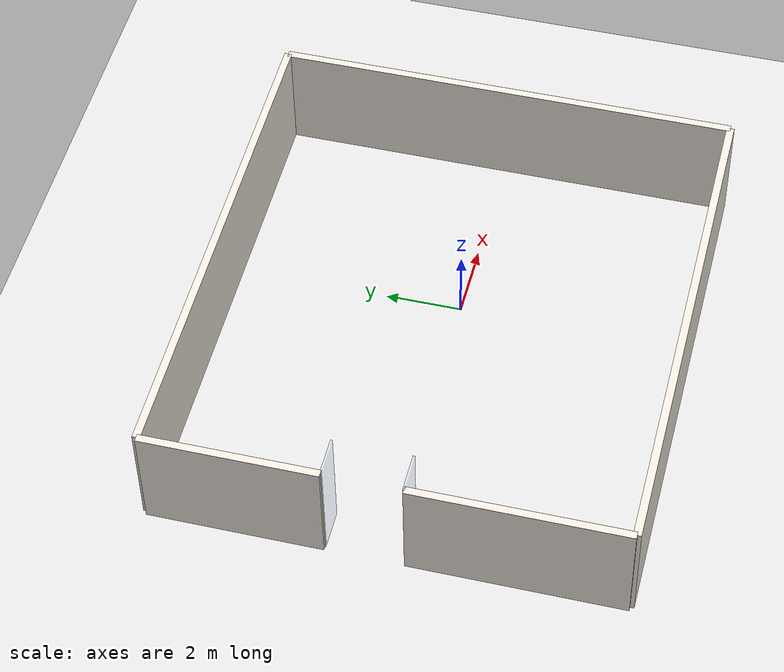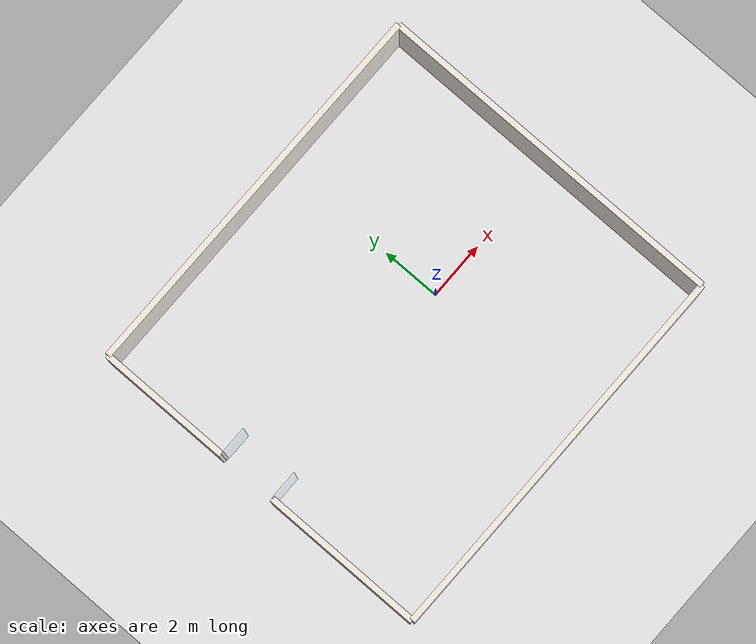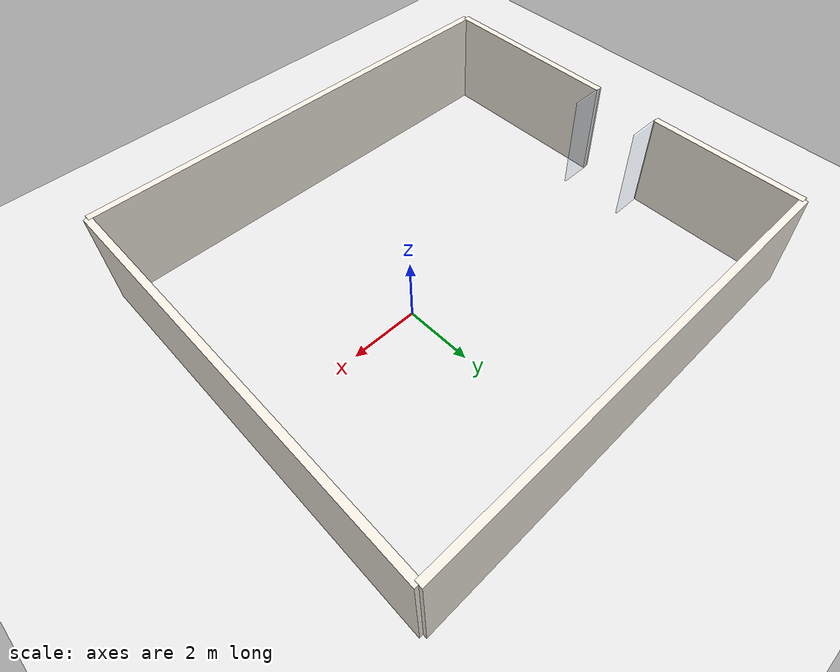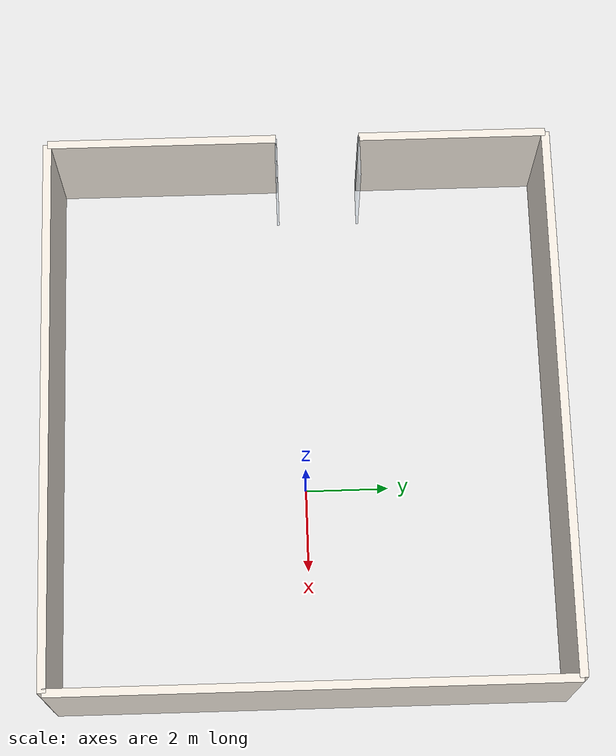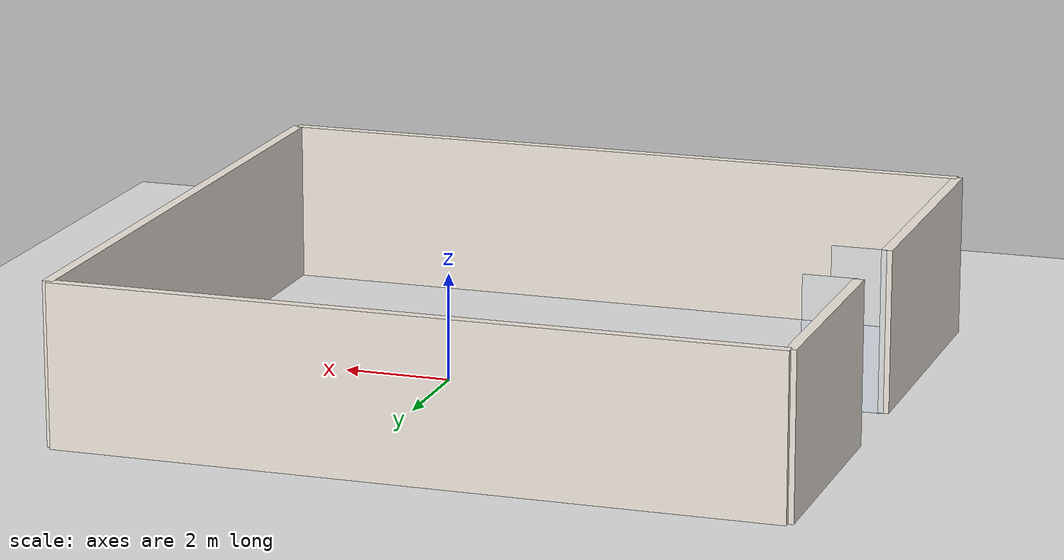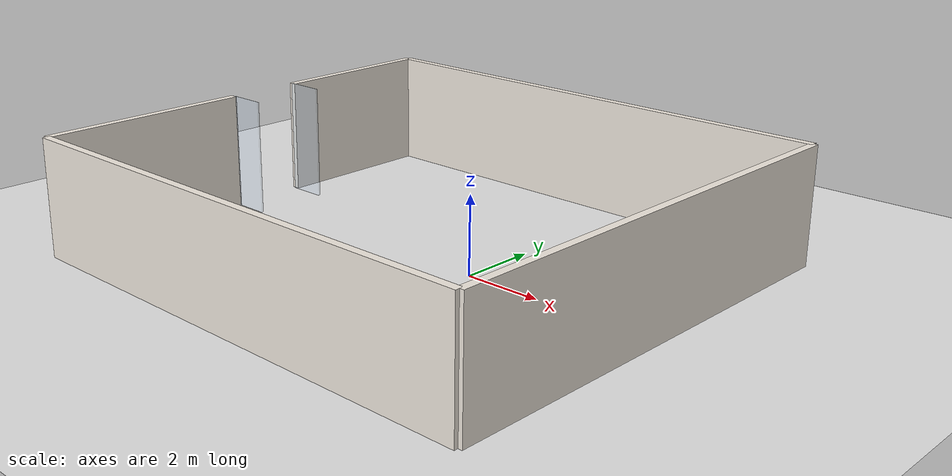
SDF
<sdf version="1.9">
 <world name="argo_restaurant">
  <model name="ground_plane">
   <static>true</static>
   <link name="link">
    <collision name="collision">
     <geometry><plane><normal>0 0 1</normal><size>100 100</size></plane></geometry>
    </collision>
    <visual name="visual">
     <geometry><plane><normal>0 0 1</normal><size>100 100</size></plane></geometry>
     <material>
      <ambient>0.9 0.9 0.9 1</ambient>
      <diffuse>0.9 0.9 0.9 1</diffuse>
      <specular>0.1 0.1 0.1 1</specular>
      <pbr><metal><roughness>0.1</roughness><metalness>0.0</metalness></metal></pbr>
     </material>
    </visual>
   </link>
  </model>
  <model name="restaurant_walls">
   <static>true</static>
   <link name="north_wall_link">
    <pose>-1.4 6 1.5 0 0 0</pose>
    <collision name="north_wall_collision"><geometry><box><size>13.2 0.2 3.0</size></box></geometry></collision>
    <visual name="north_wall_visual">
     <geometry><box><size>13.2 0.2 3.0</size></box></geometry>
     <material>
      <ambient>0.95 0.92 0.88 1</ambient>
      <diffuse>0.95 0.92 0.88 1</diffuse>
      <specular>0.1 0.1 0.1 1</specular>
      <pbr><metal><roughness>0.8</roughness><metalness>0.0</metalness></metal></pbr>
     </material>
    </visual>
   </link>
   <link name="south_wall_link">
    <pose>-1.4 -6 1.5 0 0 0</pose>
    <collision name="south_wall_collision"><geometry><box><size>13.2 0.2 3.0</size></box></geometry></collision>
    <visual name="south_wall_visual">
     <geometry><box><size>13.2 0.2 3.0</size></box></geometry>
     <material>
      <ambient>0.95 0.92 0.88 1</ambient>
      <diffuse>0.95 0.92 0.88 1</diffuse>
      <specular>0.1 0.1 0.1 1</specular>
      <pbr><metal><roughness>0.8</roughness><metalness>0.0</metalness></metal></pbr>
     </material>
    </visual>
   </link>
   <link name="east_wall_link">
    <pose>5.2 0 1.5 0 0 0</pose>
    <collision name="east_wall_collision"><geometry><box><size>0.2 12 3.0</size></box></geometry></collision>
    <visual name="east_wall_visual">
     <geometry><box><size>0.2 12 3.0</size></box></geometry>
     <material>
      <ambient>0.95 0.92 0.88 1</ambient>
      <diffuse>0.95 0.92 0.88 1</diffuse>
      <specular>0.1 0.1 0.1 1</specular>
      <pbr><metal><roughness>0.8</roughness><metalness>0.0</metalness></metal></pbr>
     </material>
    </visual>
   </link>
   <link name="west_wall_1_link">
    <pose>-8 -3.25 1.5 0 0 0</pose>
    <collision name="west_wall_1_collision"><geometry><box><size>0.2 5.5 3.0</size></box></geometry></collision>
    <visual name="west_wall_1_visual">
     <geometry><box><size>0.2 5.5 3.0</size></box></geometry>
     <material>
      <ambient>0.95 0.92 0.88 1</ambient>
      <diffuse>0.95 0.92 0.88 1</diffuse>
      <specular>0.1 0.1 0.1 1</specular>
      <pbr><metal><roughness>0.8</roughness><metalness>0.0</metalness></metal></pbr>
     </material>
    </visual>
   </link>
   <link name="west_wall_2_link">
    <pose>-8 3.75 1.5 0 0 0</pose>
    <collision name="west_wall_2_collision"><geometry><box><size>0.2 4.5 3.0</size></box></geometry></collision>
    <visual name="west_wall_2_visual">
     <geometry><box><size>0.2 4.5 3.0</size></box></geometry>
     <material>
      <ambient>0.95 0.92 0.88 1</ambient>
      <diffuse>0.95 0.92 0.88 1</diffuse>
      <specular>0.1 0.1 0.1 1</specular>
      <pbr><metal><roughness>0.8</roughness><metalness>0.0</metalness></metal></pbr>
     </material>
    </visual>
   </link>
   <link name="entrance_door_l_link">
    <pose>-7.5 -0.5 1.5 0 0 1.5708</pose>
    <collision name="entrance_door_l_collision">
     <geometry><box><size>0.05 1 3.0</size></box></geometry>
    </collision>
    <visual name="entrance_door_l_visual">
     <geometry><box><size>0.05 1 3.0</size></box></geometry>
     <material>
      <ambient>0.8 0.9 1.0 0.3</ambient>
      <diffuse>0.8 0.9 1.0 0.3</diffuse>
      <specular>0.9 0.9 0.9 1</specular>
      <pbr><metal><roughness>0.0</roughness><metalness>0.9</metalness></metal></pbr>
     </material>
    </visual>
   </link>
   <link name="entrance_door_r_link">
    <pose>-7.5 1.5 1.5 0 0 1.5708</pose>
    <collision name="entrance_door_r_collision">
     <geometry><box><size>0.05 1 3.0</size></box></geometry>
    </collision>
    <visual name="entrance_door_r_visual">
     <geometry><box><size>0.05 1 3.0</size></box></geometry>
     <material>
      <ambient>0.8 0.9 1.0 0.3</ambient>
      <diffuse>0.8 0.9 1.0 0.3</diffuse>
      <specular>0.9 0.9 0.9 1</specular>
      <pbr><metal><roughness>0.0</roughness><metalness>0.9</metalness></metal></pbr>
     </material>
    </visual>
   </link>
  </model>
 </world>
</sdf>
